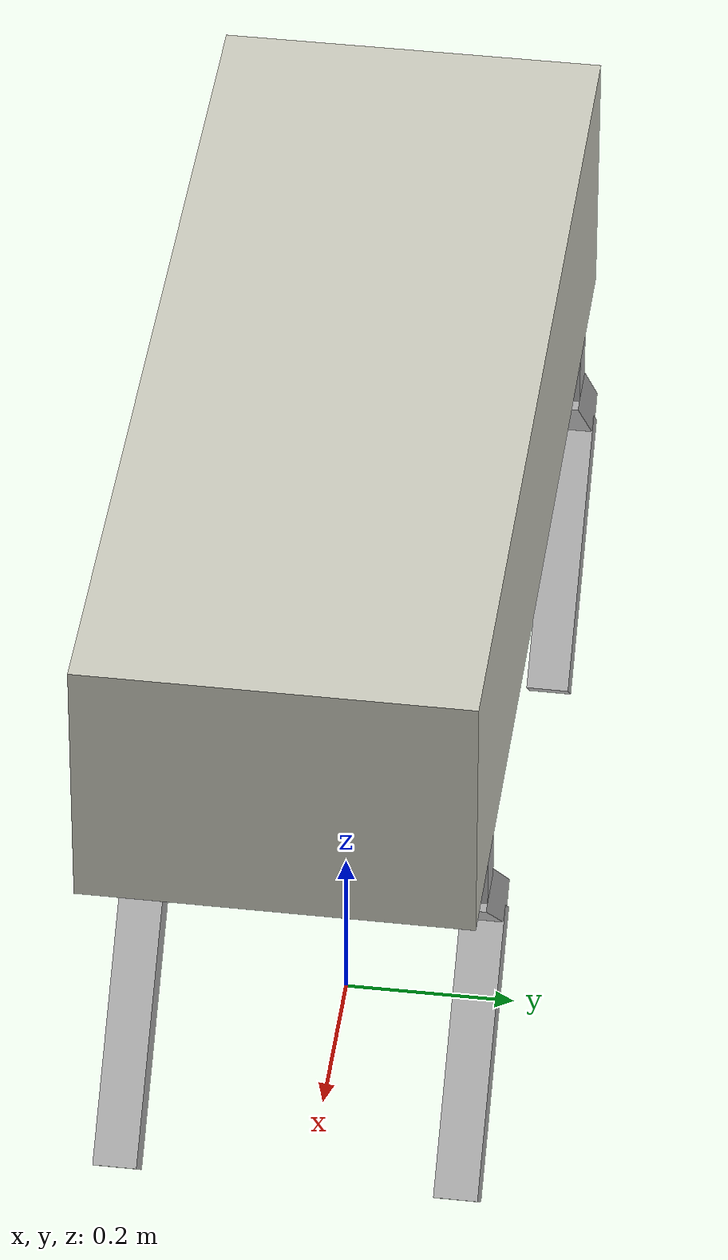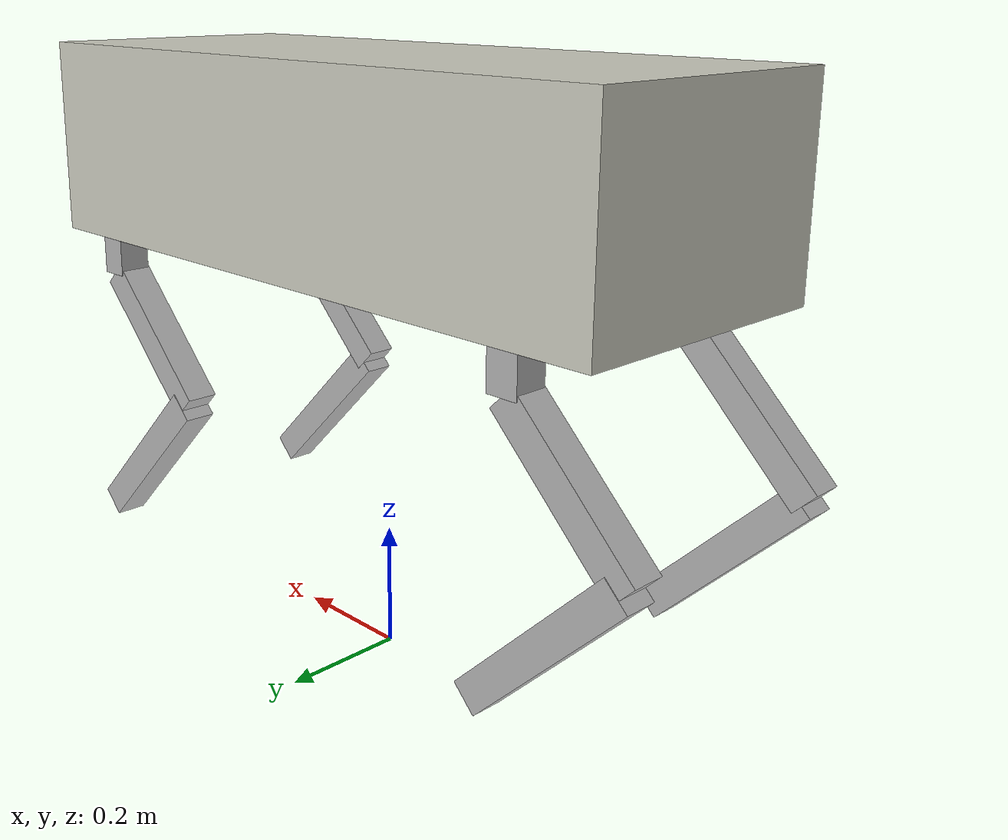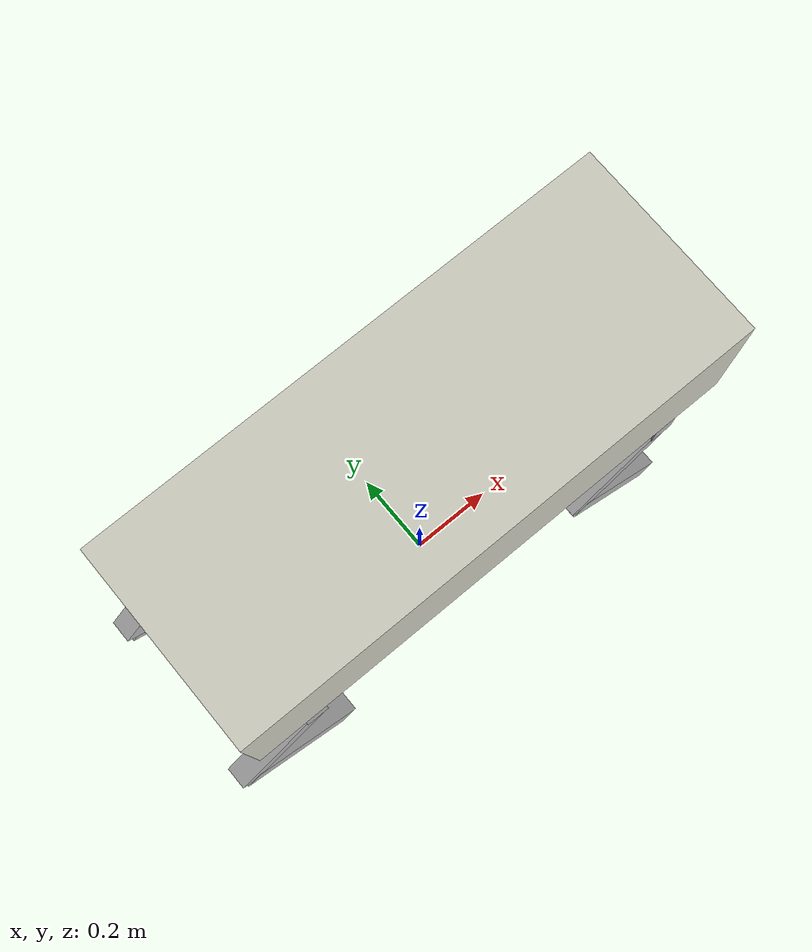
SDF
<?xml version='1.0'?>
<sdf version='1.6'>
  <model name='Quadruped_Robot'>
    <link name='imulink'>
      <inertial>
        <mass>0.52</mass>
        <inertia>
          <ixx>0.0866667</ixx>
          <ixy>0</ixy>
          <ixz>0</ixz>
          <iyy>0.0866667</iyy>
          <iyz>0</iyz>
          <izz>0.0866667</izz>
        </inertia>
        <pose frame=''>0 0 0 0 -0 0</pose>
      </inertial>
      <pose frame=''>0 0 0 3.14159 -0 0</pose>
      <gravity>1</gravity>
      <self_collide>0</self_collide>
      <kinematic>0</kinematic>
      <enable_wind>0</enable_wind>
      <sensor name='ekinox_sensor' type='imu'>
        <imu>
          <orientation_reference_frame>
            <localization>NED</localization>
          </orientation_reference_frame>
          <topic>/QuadRobotIMU</topic>
        </imu>
        <always_on>1</always_on>
        <update_rate>200</update_rate>
        <visualize>0</visualize>
        <plugin name='qrINSmessge' filename='libqrINSmessage_plugin.so'/>
      </sensor>
      <pose frame=''>0 0 0 0 -0 0</pose>
      <pose frame=''>0 0 -0.16 0 -0 0</pose>
      <visual name='visual'>
        <pose frame=''>0 0 0 0 -0 0</pose>
        <geometry>
          <mesh>
            <uri>model://Ekinox_INS/ekinox_ins.dae</uri>
          </mesh>
        </geometry>
        <material>
          <lighting>1</lighting>
          <script>
            <uri>file://media/materials/scripts/gazebo.material</uri>
            <name>Gazebo/Grey</name>
          </script>
          <shader type='vertex'>
            <normal_map>__default__</normal_map>
          </shader>
          <ambient>0.3 0.3 0.3 1</ambient>
          <diffuse>0.7 0.7 0.7 1</diffuse>
          <specular>0.01 0.01 0.01 1</specular>
          <emissive>0 0 0 1</emissive>
        </material>
        <transparency>0</transparency>
        <cast_shadows>1</cast_shadows>
      </visual>
      <collision name='collision'>
        <laser_retro>0</laser_retro>
        <max_contacts>10</max_contacts>
        <pose frame=''>0 0 0 0 -0 0</pose>
        <geometry>
          <mesh>
            <uri>/home/cx/model_editor_models/Ekinox_INS/ekinox_ins.dae</uri>
            <scale>1 1 1</scale>
          </mesh>
        </geometry>
        <surface>
          <friction>
            <ode>
              <mu>1</mu>
              <mu2>1</mu2>
              <fdir1>0 0 0</fdir1>
              <slip1>0</slip1>
              <slip2>0</slip2>
            </ode>
            <torsional>
              <coefficient>1</coefficient>
              <patch_radius>0</patch_radius>
              <surface_radius>0</surface_radius>
              <use_patch_radius>1</use_patch_radius>
              <ode>
                <slip>0</slip>
              </ode>
            </torsional>
          </friction>
          <bounce>
            <restitution_coefficient>0</restitution_coefficient>
            <threshold>1e+06</threshold>
          </bounce>
          <contact>
            <collide_without_contact>0</collide_without_contact>
            <collide_without_contact_bitmask>1</collide_without_contact_bitmask>
            <collide_bitmask>1</collide_bitmask>
            <ode>
              <soft_cfm>0</soft_cfm>
              <soft_erp>0.2</soft_erp>
              <kp>1e+13</kp>
              <kd>1</kd>
              <max_vel>0.01</max_vel>
              <min_depth>0</min_depth>
            </ode>
            <bullet>
              <split_impulse>1</split_impulse>
              <split_impulse_penetration_threshold>-0.01</split_impulse_penetration_threshold>
              <soft_cfm>0</soft_cfm>
              <soft_erp>0.2</soft_erp>
              <kp>1e+13</kp>
              <kd>1</kd>
            </bullet>
          </contact>
        </surface>
      </collision>
    </link>
    <link name='BackLeft_L1'>
      <inertial>
        <mass>1.053</mass>
        <inertia>
          <ixx>0.00053003</ixx>
          <ixy>0</ixy>
          <ixz>0</ixz>
          <iyy>0.00053003</iyy>
          <iyz>0</iyz>
          <izz>0.00043875</izz>
        </inertia>
        <pose frame=''>0 0 0 0 -0 0</pose>
      </inertial>
      <pose frame=''>-0.441 0.195 -0.18725 3.14159 -0 0</pose>
      <gravity>1</gravity>
      <self_collide>0</self_collide>
      <kinematic>0</kinematic>
      <enable_wind>0</enable_wind>
      <visual name='visual'>
        <pose frame=''>0 0 0 0 -0 0</pose>
        <geometry>
          <box>
            <size>0.05 0.05 0.0595</size>
          </box>
        </geometry>
        <material>
          <lighting>1</lighting>
          <script>
            <uri>file://media/materials/scripts/gazebo.material</uri>
            <name>Gazebo/PioneerBody</name>
          </script>
          <shader type='vertex'>
            <normal_map>__default__</normal_map>
          </shader>
          <ambient>0.3 0.3 0.3 1</ambient>
          <diffuse>0.7 0.7 0.7 1</diffuse>
          <specular>0.01 0.01 0.01 1</specular>
          <emissive>0 0 0 1</emissive>
        </material>
        <transparency>0</transparency>
        <cast_shadows>1</cast_shadows>
      </visual>
      <collision name='collision'>
        <laser_retro>0</laser_retro>
        <max_contacts>10</max_contacts>
        <pose frame=''>0 0 0 0 -0 0</pose>
        <geometry>
          <box>
            <size>0.05 0.05 0.0595</size>
          </box>
        </geometry>
        <surface>
          <friction>
            <ode>
              <mu>1</mu>
              <mu2>1</mu2>
              <fdir1>0 0 0</fdir1>
              <slip1>0</slip1>
              <slip2>0</slip2>
            </ode>
            <torsional>
              <coefficient>1</coefficient>
              <patch_radius>0</patch_radius>
              <surface_radius>0</surface_radius>
              <use_patch_radius>1</use_patch_radius>
              <ode>
                <slip>0</slip>
              </ode>
            </torsional>
          </friction>
          <bounce>
            <restitution_coefficient>0</restitution_coefficient>
            <threshold>1e+06</threshold>
          </bounce>
          <contact>
            <collide_without_contact>0</collide_without_contact>
            <collide_without_contact_bitmask>1</collide_without_contact_bitmask>
            <collide_bitmask>1</collide_bitmask>
            <ode>
              <soft_cfm>0</soft_cfm>
              <soft_erp>0.2</soft_erp>
              <kp>1e+13</kp>
              <kd>1</kd>
              <max_vel>0.01</max_vel>
              <min_depth>0</min_depth>
            </ode>
            <bullet>
              <split_impulse>1</split_impulse>
              <split_impulse_penetration_threshold>-0.01</split_impulse_penetration_threshold>
              <soft_cfm>0</soft_cfm>
              <soft_erp>0.2</soft_erp>
              <kp>1e+13</kp>
              <kd>1</kd>
            </bullet>
          </contact>
        </surface>
      </collision>
    </link>
    <link name='BackLeft_L2'>
      <inertial>
        <mass>5.245</mass>
        <inertia>
          <ixx>0.874167</ixx>
          <ixy>0</ixy>
          <ixz>0</ixz>
          <iyy>0.874167</iyy>
          <iyz>0</iyz>
          <izz>0.874167</izz>
        </inertia>
        <pose frame=''>0 0 0 0 -0 0</pose>
      </inertial>
      <pose frame=''>-0.534435 0.193246 -0.3125 3.14159 0.785398 0</pose>
      <gravity>1</gravity>
      <self_collide>0</self_collide>
      <kinematic>0</kinematic>
      <enable_wind>0</enable_wind>
      <visual name='visual'>
        <pose frame=''>0 0 0 0 -0 0</pose>
        <geometry>
          <box>
            <size>0.05 0.05 0.27</size>
          </box>
        </geometry>
        <material>
          <lighting>1</lighting>
          <script>
            <uri>file://media/materials/scripts/gazebo.material</uri>
            <name>Gazebo/PioneerBody</name>
          </script>
          <shader type='vertex'>
            <normal_map>__default__</normal_map>
          </shader>
          <ambient>0.3 0.3 0.3 1</ambient>
          <diffuse>0.7 0.7 0.7 1</diffuse>
          <specular>0.01 0.01 0.01 1</specular>
          <emissive>0 0 0 1</emissive>
        </material>
        <transparency>0</transparency>
        <cast_shadows>1</cast_shadows>
      </visual>
      <collision name='collision'>
        <laser_retro>0</laser_retro>
        <max_contacts>10</max_contacts>
        <pose frame=''>0 0 0 0 -0 0</pose>
        <geometry>
          <box>
            <size>0.05 0.05 0.27</size>
          </box>
        </geometry>
        <surface>
          <friction>
            <ode>
              <mu>1</mu>
              <mu2>1</mu2>
              <fdir1>0 0 0</fdir1>
              <slip1>0</slip1>
              <slip2>0</slip2>
            </ode>
            <torsional>
              <coefficient>1</coefficient>
              <patch_radius>0</patch_radius>
              <surface_radius>0</surface_radius>
              <use_patch_radius>1</use_patch_radius>
              <ode>
                <slip>0</slip>
              </ode>
            </torsional>
          </friction>
          <bounce>
            <restitution_coefficient>0</restitution_coefficient>
            <threshold>1e+06</threshold>
          </bounce>
          <contact>
            <collide_without_contact>0</collide_without_contact>
            <collide_without_contact_bitmask>1</collide_without_contact_bitmask>
            <collide_bitmask>1</collide_bitmask>
            <ode>
              <soft_cfm>0</soft_cfm>
              <soft_erp>0.2</soft_erp>
              <kp>1e+13</kp>
              <kd>1</kd>
              <max_vel>0.01</max_vel>
              <min_depth>0</min_depth>
            </ode>
            <bullet>
              <split_impulse>1</split_impulse>
              <split_impulse_penetration_threshold>-0.01</split_impulse_penetration_threshold>
              <soft_cfm>0</soft_cfm>
              <soft_erp>0.2</soft_erp>
              <kp>1e+13</kp>
              <kd>1</kd>
            </bullet>
          </contact>
        </surface>
      </collision>
    </link>
    <link name='BackLeft_L3'>
      <inertial>
        <mass>3.178</mass>
        <inertia>
          <ixx>0.529667</ixx>
          <ixy>0</ixy>
          <ixz>0</ixz>
          <iyy>0.529667</iyy>
          <iyz>0</iyz>
          <izz>0.529667</izz>
        </inertia>
        <pose frame=''>0 0 0 0 -0 0</pose>
      </inertial>
      <pose frame=''>-0.503457 0.194 -0.52632 3.14159 -0.785398 0</pose>
      <gravity>1</gravity>
      <self_collide>0</self_collide>
      <kinematic>0</kinematic>
      <enable_wind>0</enable_wind>
      <visual name='visual'>
        <pose frame=''>0 0 0 0 -0 0</pose>
        <geometry>
          <box>
            <size>0.05 0.05 0.335</size>
          </box>
        </geometry>
        <material>
          <lighting>1</lighting>
          <script>
            <uri>file://media/materials/scripts/gazebo.material</uri>
            <name>Gazebo/PioneerBody</name>
          </script>
          <shader type='vertex'>
            <normal_map>__default__</normal_map>
          </shader>
          <ambient>0.3 0.3 0.3 1</ambient>
          <diffuse>0.7 0.7 0.7 1</diffuse>
          <specular>0.01 0.01 0.01 1</specular>
          <emissive>0 0 0 1</emissive>
        </material>
        <transparency>0</transparency>
        <cast_shadows>1</cast_shadows>
      </visual>
      <collision name='collision'>
        <laser_retro>0</laser_retro>
        <max_contacts>10</max_contacts>
        <pose frame=''>0 0 0 0 -0 0</pose>
        <geometry>
          <box>
            <size>0.05 0.05 0.335</size>
          </box>
        </geometry>
        <surface>
          <friction>
            <ode>
              <mu>0.6</mu>
              <mu2>0.6</mu2>
              <fdir1>0 0 0</fdir1>
              <slip1>0</slip1>
              <slip2>0</slip2>
            </ode>
            <torsional>
              <coefficient>1</coefficient>
              <patch_radius>0</patch_radius>
              <surface_radius>0</surface_radius>
              <use_patch_radius>1</use_patch_radius>
              <ode>
                <slip>0</slip>
              </ode>
            </torsional>
          </friction>
          <bounce>
            <restitution_coefficient>0</restitution_coefficient>
            <threshold>1e+06</threshold>
          </bounce>
          <contact>
            <collide_without_contact>0</collide_without_contact>
            <collide_without_contact_bitmask>1</collide_without_contact_bitmask>
            <collide_bitmask>1</collide_bitmask>
            <ode>
              <soft_cfm>0</soft_cfm>
              <soft_erp>0.2</soft_erp>
              <kp>1e+13</kp>
              <kd>1</kd>
              <max_vel>0.001</max_vel>
              <min_depth>0.001</min_depth>
            </ode>
            <bullet>
              <split_impulse>1</split_impulse>
              <split_impulse_penetration_threshold>-0.01</split_impulse_penetration_threshold>
              <soft_cfm>0</soft_cfm>
              <soft_erp>0.2</soft_erp>
              <kp>1e+13</kp>
              <kd>1</kd>
            </bullet>
          </contact>
        </surface>
      </collision>
	  <sensor name="bl_contact" type="contact">
		<always_on>1</always_on>
		<update_rate>1000</update_rate>
		<visualize>0</visualize>
  		<contact>
    	  <collision>collision</collision>
  		</contact>
      </sensor>
    </link>
    <link name='Body_Link'>
      <inertial>
        <mass>80</mass>
        <inertia>
          <ixx>1.95217</ixx>
          <ixy>0</ixy>
          <ixz>0</ixz>
          <iyy>9.47817</iyy>
          <iyz>0</iyz>
          <izz>10.1073</izz>
        </inertia>
        <pose frame=''>0 0 0 0 -0 0</pose>
      </inertial>
      <pose frame=''>0 0 0 3.14159 -0 0</pose>
      <gravity>1</gravity>
      <self_collide>0</self_collide>
      <kinematic>0</kinematic>
      <enable_wind>0</enable_wind>
      <visual name='visual'>
        <pose frame=''>0 0 0 0 -0 0</pose>
        <geometry>
          <box>
            <size>1.15 0.44 0.315</size>
          </box>
        </geometry>
        <material>
          <lighting>1</lighting>
          <script>
            <uri>file://media/materials/scripts/gazebo.material</uri>
            <name>Gazebo/PaintedWall</name>
          </script>
          <emissive>0 0 0 1</emissive>
          <shader type='vertex'>
            <normal_map>__default__</normal_map>
          </shader>
          <ambient>0.3 0.3 0.3 1</ambient>
          <diffuse>0.7 0.7 0.7 1</diffuse>
          <specular>0.01 0.01 0.01 1</specular>
        </material>
        <transparency>0</transparency>
        <cast_shadows>1</cast_shadows>
      </visual>
      <collision name='collision'>
        <laser_retro>0</laser_retro>
        <max_contacts>10</max_contacts>
        <pose frame=''>0 0 0 0 -0 0</pose>
        <geometry>
          <box>
            <size>1.15 0.44 0.315</size>
          </box>
        </geometry>
        <surface>
          <friction>
            <ode>
              <mu>1</mu>
              <mu2>1</mu2>
              <fdir1>0 0 0</fdir1>
              <slip1>0</slip1>
              <slip2>0</slip2>
            </ode>
            <torsional>
              <coefficient>1</coefficient>
              <patch_radius>0</patch_radius>
              <surface_radius>0</surface_radius>
              <use_patch_radius>1</use_patch_radius>
              <ode>
                <slip>0</slip>
              </ode>
            </torsional>
          </friction>
          <bounce>
            <restitution_coefficient>0</restitution_coefficient>
            <threshold>1e+06</threshold>
          </bounce>
          <contact>
            <collide_without_contact>0</collide_without_contact>
            <collide_without_contact_bitmask>1</collide_without_contact_bitmask>
            <collide_bitmask>1</collide_bitmask>
            <ode>
              <soft_cfm>0</soft_cfm>
              <soft_erp>0.2</soft_erp>
              <kp>1e+13</kp>
              <kd>1</kd>
              <max_vel>0.01</max_vel>
              <min_depth>0</min_depth>
            </ode>
            <bullet>
              <split_impulse>1</split_impulse>
              <split_impulse_penetration_threshold>-0.01</split_impulse_penetration_threshold>
              <soft_cfm>0</soft_cfm>
              <soft_erp>0.2</soft_erp>
              <kp>1e+13</kp>
              <kd>1</kd>
            </bullet>
          </contact>
        </surface>
      </collision>
    </link>
    <link name='FrontLeft_L1'>
      <inertial>
        <mass>1.053</mass>
        <inertia>
          <ixx>0.00053003</ixx>
          <ixy>0</ixy>
          <ixz>0</ixz>
          <iyy>0.00053003</iyy>
          <iyz>0</iyz>
          <izz>0.00043875</izz>
        </inertia>
        <pose frame=''>0 0 0 0 -0 0</pose>
      </inertial>
      <pose frame=''>0.441 0.195 -0.18725 3.14159 -0 0</pose>
      <gravity>1</gravity>
      <self_collide>0</self_collide>
      <kinematic>0</kinematic>
      <enable_wind>0</enable_wind>
      <visual name='visual'>
        <pose frame=''>0 0 0 0 -0 0</pose>
        <geometry>
          <box>
            <size>0.05 0.05 0.0595</size>
          </box>
        </geometry>
        <material>
          <lighting>1</lighting>
          <script>
            <uri>file://media/materials/scripts/gazebo.material</uri>
            <name>Gazebo/PioneerBody</name>
          </script>
          <shader type='vertex'>
            <normal_map>__default__</normal_map>
          </shader>
          <ambient>0.3 0.3 0.3 1</ambient>
          <diffuse>0.7 0.7 0.7 1</diffuse>
          <specular>0.01 0.01 0.01 1</specular>
          <emissive>0 0 0 1</emissive>
        </material>
        <transparency>0</transparency>
        <cast_shadows>1</cast_shadows>
      </visual>
      <collision name='collision'>
        <laser_retro>0</laser_retro>
        <max_contacts>10</max_contacts>
        <pose frame=''>0 0 0 0 -0 0</pose>
        <geometry>
          <box>
            <size>0.05 0.05 0.0595</size>
          </box>
        </geometry>
        <surface>
          <friction>
            <ode>
              <mu>1</mu>
              <mu2>1</mu2>
              <fdir1>0 0 0</fdir1>
              <slip1>0</slip1>
              <slip2>0</slip2>
            </ode>
            <torsional>
              <coefficient>1</coefficient>
              <patch_radius>0</patch_radius>
              <surface_radius>0</surface_radius>
              <use_patch_radius>1</use_patch_radius>
              <ode>
                <slip>0</slip>
              </ode>
            </torsional>
          </friction>
          <bounce>
            <restitution_coefficient>0</restitution_coefficient>
            <threshold>1e+06</threshold>
          </bounce>
          <contact>
            <collide_without_contact>0</collide_without_contact>
            <collide_without_contact_bitmask>1</collide_without_contact_bitmask>
            <collide_bitmask>1</collide_bitmask>
            <ode>
              <soft_cfm>0</soft_cfm>
              <soft_erp>0.2</soft_erp>
              <kp>1e+13</kp>
              <kd>1</kd>
              <max_vel>0.01</max_vel>
              <min_depth>0</min_depth>
            </ode>
            <bullet>
              <split_impulse>1</split_impulse>
              <split_impulse_penetration_threshold>-0.01</split_impulse_penetration_threshold>
              <soft_cfm>0</soft_cfm>
              <soft_erp>0.2</soft_erp>
              <kp>1e+13</kp>
              <kd>1</kd>
            </bullet>
          </contact>
        </surface>
      </collision>
    </link>
    <link name='FrontLeft_L2'>
      <inertial>
        <mass>5.245</mass>
        <inertia>
          <ixx>0.874167</ixx>
          <ixy>0</ixy>
          <ixz>0</ixz>
          <iyy>0.874167</iyy>
          <iyz>0</iyz>
          <izz>0.874167</izz>
        </inertia>
        <pose frame=''>0 0 0 0 -0 0</pose>
      </inertial>
      <pose frame=''>0.347565 0.193246 -0.3125 3.14159 0.785398 0</pose>
      <gravity>1</gravity>
      <self_collide>0</self_collide>
      <kinematic>0</kinematic>
      <enable_wind>0</enable_wind>
      <visual name='visual'>
        <pose frame=''>0 0 0 0 -0 0</pose>
        <geometry>
          <box>
            <size>0.05 0.05 0.27</size>
          </box>
        </geometry>
        <material>
          <lighting>1</lighting>
          <script>
            <uri>file://media/materials/scripts/gazebo.material</uri>
            <name>Gazebo/PioneerBody</name>
          </script>
          <shader type='vertex'>
            <normal_map>__default__</normal_map>
          </shader>
          <ambient>0.3 0.3 0.3 1</ambient>
          <diffuse>0.7 0.7 0.7 1</diffuse>
          <specular>0.01 0.01 0.01 1</specular>
          <emissive>0 0 0 1</emissive>
        </material>
        <transparency>0</transparency>
        <cast_shadows>1</cast_shadows>
      </visual>
      <collision name='collision'>
        <laser_retro>0</laser_retro>
        <max_contacts>10</max_contacts>
        <pose frame=''>0 0 0 0 -0 0</pose>
        <geometry>
          <box>
            <size>0.05 0.05 0.27</size>
          </box>
        </geometry>
        <surface>
          <friction>
            <ode>
              <mu>1</mu>
              <mu2>1</mu2>
              <fdir1>0 0 0</fdir1>
              <slip1>0</slip1>
              <slip2>0</slip2>
            </ode>
            <torsional>
              <coefficient>1</coefficient>
              <patch_radius>0</patch_radius>
              <surface_radius>0</surface_radius>
              <use_patch_radius>1</use_patch_radius>
              <ode>
                <slip>0</slip>
              </ode>
            </torsional>
          </friction>
          <bounce>
            <restitution_coefficient>0</restitution_coefficient>
            <threshold>1e+06</threshold>
          </bounce>
          <contact>
            <collide_without_contact>0</collide_without_contact>
            <collide_without_contact_bitmask>1</collide_without_contact_bitmask>
            <collide_bitmask>1</collide_bitmask>
            <ode>
              <soft_cfm>0</soft_cfm>
              <soft_erp>0.2</soft_erp>
              <kp>1e+13</kp>
              <kd>1</kd>
              <max_vel>0.01</max_vel>
              <min_depth>0</min_depth>
            </ode>
            <bullet>
              <split_impulse>1</split_impulse>
              <split_impulse_penetration_threshold>-0.01</split_impulse_penetration_threshold>
              <soft_cfm>0</soft_cfm>
              <soft_erp>0.2</soft_erp>
              <kp>1e+13</kp>
              <kd>1</kd>
            </bullet>
          </contact>
        </surface>
      </collision>
    </link>
    <link name='FrontLeft_L3'>
      <inertial>
        <mass>3.178</mass>
        <inertia>
          <ixx>0.529667</ixx>
          <ixy>0</ixy>
          <ixz>0</ixz>
          <iyy>0.529667</iyy>
          <iyz>0</iyz>
          <izz>0.529667</izz>
        </inertia>
        <pose frame=''>0 0 0 0 -0 0</pose>
      </inertial>
      <pose frame=''>0.378543 0.194 -0.52632 3.14159 -0.785398 0</pose>
      <gravity>1</gravity>
      <self_collide>0</self_collide>
      <kinematic>0</kinematic>
      <enable_wind>0</enable_wind>
      <visual name='visual'>
        <pose frame=''>0 0 0 0 -0 0</pose>
        <geometry>
          <box>
            <size>0.05 0.05 0.335</size>
          </box>
        </geometry>
        <material>
          <lighting>1</lighting>
          <script>
            <uri>file://media/materials/scripts/gazebo.material</uri>
            <name>Gazebo/PioneerBody</name>
          </script>
          <shader type='vertex'>
            <normal_map>__default__</normal_map>
          </shader>
          <ambient>0.3 0.3 0.3 1</ambient>
          <diffuse>0.7 0.7 0.7 1</diffuse>
          <specular>0.01 0.01 0.01 1</specular>
          <emissive>0 0 0 1</emissive>
        </material>
        <transparency>0</transparency>
        <cast_shadows>1</cast_shadows>
      </visual>
      <collision name='collision'>
        <laser_retro>0</laser_retro>
        <max_contacts>10</max_contacts>
        <pose frame=''>0 0 0 0 -0 0</pose>
        <geometry>
          <box>
            <size>0.05 0.05 0.335</size>
          </box>
        </geometry>
        <surface>
          <friction>
            <ode>
              <mu>0.6</mu>
              <mu2>0.6</mu2>
              <fdir1>0 0 0</fdir1>
              <slip1>0</slip1>
              <slip2>0</slip2>
            </ode>
            <torsional>
              <coefficient>1</coefficient>
              <patch_radius>0</patch_radius>
              <surface_radius>0</surface_radius>
              <use_patch_radius>1</use_patch_radius>
              <ode>
                <slip>0</slip>
              </ode>
            </torsional>
          </friction>
          <bounce>
            <restitution_coefficient>0</restitution_coefficient>
            <threshold>1e+06</threshold>
          </bounce>
          <contact>
            <collide_without_contact>0</collide_without_contact>
            <collide_without_contact_bitmask>1</collide_without_contact_bitmask>
            <collide_bitmask>1</collide_bitmask>
            <ode>
              <soft_cfm>0</soft_cfm>
              <soft_erp>0.2</soft_erp>
              <kp>1e+13</kp>
              <kd>1</kd>
              <max_vel>0.001</max_vel>
              <min_depth>0.001</min_depth>
            </ode>
            <bullet>
              <split_impulse>1</split_impulse>
              <split_impulse_penetration_threshold>-0.01</split_impulse_penetration_threshold>
              <soft_cfm>0</soft_cfm>
              <soft_erp>0.2</soft_erp>
              <kp>1e+13</kp>
              <kd>1</kd>
            </bullet>
          </contact>
        </surface>
      </collision>
	  <sensor name="fl_contact" type="contact">
		<always_on>1</always_on>
		<update_rate>1000</update_rate>
		<visualize>0</visualize>
  		<contact>
    	  <collision>collision</collision>
  		</contact>
      </sensor>
    </link>
    <link name='FrontRight_L1'>
      <inertial>
        <mass>1.053</mass>
        <inertia>
          <ixx>0.00053003</ixx>
          <ixy>0</ixy>
          <ixz>0</ixz>
          <iyy>0.00053003</iyy>
          <iyz>0</iyz>
          <izz>0.00043875</izz>
        </inertia>
        <pose frame=''>0 0 0 0 -0 0</pose>
      </inertial>
      <pose frame=''>0.441 -0.195 -0.18725 3.14159 -0 0</pose>
      <gravity>1</gravity>
      <self_collide>0</self_collide>
      <kinematic>0</kinematic>
      <enable_wind>0</enable_wind>
      <visual name='visual'>
        <pose frame=''>0 0 0 0 -0 0</pose>
        <geometry>
          <box>
            <size>0.05 0.05 0.0595</size>
          </box>
        </geometry>
        <material>
          <lighting>1</lighting>
          <script>
            <uri>file://media/materials/scripts/gazebo.material</uri>
            <name>Gazebo/PioneerBody</name>
          </script>
          <shader type='vertex'>
            <normal_map>__default__</normal_map>
          </shader>
          <ambient>0.3 0.3 0.3 1</ambient>
          <diffuse>0.7 0.7 0.7 1</diffuse>
          <specular>0.01 0.01 0.01 1</specular>
          <emissive>0 0 0 1</emissive>
        </material>
        <transparency>0</transparency>
        <cast_shadows>1</cast_shadows>
      </visual>
      <collision name='collision'>
        <laser_retro>0</laser_retro>
        <max_contacts>10</max_contacts>
        <pose frame=''>0 0 0 0 -0 0</pose>
        <geometry>
          <box>
            <size>0.05 0.05 0.0595</size>
          </box>
        </geometry>
        <surface>
          <friction>
            <ode>
              <mu>1</mu>
              <mu2>1</mu2>
              <fdir1>0 0 0</fdir1>
              <slip1>0</slip1>
              <slip2>0</slip2>
            </ode>
            <torsional>
              <coefficient>1</coefficient>
              <patch_radius>0</patch_radius>
              <surface_radius>0</surface_radius>
              <use_patch_radius>1</use_patch_radius>
              <ode>
                <slip>0</slip>
              </ode>
            </torsional>
          </friction>
          <bounce>
            <restitution_coefficient>0</restitution_coefficient>
            <threshold>1e+06</threshold>
          </bounce>
          <contact>
            <collide_without_contact>0</collide_without_contact>
            <collide_without_contact_bitmask>1</collide_without_contact_bitmask>
            <collide_bitmask>1</collide_bitmask>
            <ode>
              <soft_cfm>0</soft_cfm>
              <soft_erp>0.2</soft_erp>
              <kp>1e+13</kp>
              <kd>1</kd>
              <max_vel>0.01</max_vel>
              <min_depth>0</min_depth>
            </ode>
            <bullet>
              <split_impulse>1</split_impulse>
              <split_impulse_penetration_threshold>-0.01</split_impulse_penetration_threshold>
              <soft_cfm>0</soft_cfm>
              <soft_erp>0.2</soft_erp>
              <kp>1e+13</kp>
              <kd>1</kd>
            </bullet>
          </contact>
        </surface>
      </collision>
    </link>
    <link name='FrontRight_L2'>
      <inertial>
        <mass>5.245</mass>
        <inertia>
          <ixx>0.874167</ixx>
          <ixy>0</ixy>
          <ixz>0</ixz>
          <iyy>0.874167</iyy>
          <iyz>0</iyz>
          <izz>0.874167</izz>
        </inertia>
        <pose frame=''>0 0 0 0 -0 0</pose>
      </inertial>
      <pose frame=''>0.347565 -0.193246 -0.3125 3.14159 0.785398 0</pose>
      <gravity>1</gravity>
      <self_collide>0</self_collide>
      <kinematic>0</kinematic>
      <enable_wind>0</enable_wind>
      <visual name='visual'>
        <pose frame=''>0 0 0 0 -0 0</pose>
        <geometry>
          <box>
            <size>0.05 0.05 0.27</size>
          </box>
        </geometry>
        <material>
          <lighting>1</lighting>
          <script>
            <uri>file://media/materials/scripts/gazebo.material</uri>
            <name>Gazebo/PioneerBody</name>
          </script>
          <shader type='vertex'>
            <normal_map>__default__</normal_map>
          </shader>
          <ambient>0.3 0.3 0.3 1</ambient>
          <diffuse>0.7 0.7 0.7 1</diffuse>
          <specular>0.01 0.01 0.01 1</specular>
          <emissive>0 0 0 1</emissive>
        </material>
        <transparency>0</transparency>
        <cast_shadows>1</cast_shadows>
      </visual>
      <collision name='collision'>
        <laser_retro>0</laser_retro>
        <max_contacts>10</max_contacts>
        <pose frame=''>0 0 0 0 -0 0</pose>
        <geometry>
          <box>
            <size>0.05 0.05 0.27</size>
          </box>
        </geometry>
        <surface>
          <friction>
            <ode>
              <mu>1</mu>
              <mu2>1</mu2>
              <fdir1>0 0 0</fdir1>
              <slip1>0</slip1>
              <slip2>0</slip2>
            </ode>
            <torsional>
              <coefficient>1</coefficient>
              <patch_radius>0</patch_radius>
              <surface_radius>0</surface_radius>
              <use_patch_radius>1</use_patch_radius>
              <ode>
                <slip>0</slip>
              </ode>
            </torsional>
          </friction>
          <bounce>
            <restitution_coefficient>0</restitution_coefficient>
            <threshold>1e+06</threshold>
          </bounce>
          <contact>
            <collide_without_contact>0</collide_without_contact>
            <collide_without_contact_bitmask>1</collide_without_contact_bitmask>
            <collide_bitmask>1</collide_bitmask>
            <ode>
              <soft_cfm>0</soft_cfm>
              <soft_erp>0.2</soft_erp>
              <kp>1e+13</kp>
              <kd>1</kd>
              <max_vel>0.01</max_vel>
              <min_depth>0</min_depth>
            </ode>
            <bullet>
              <split_impulse>1</split_impulse>
              <split_impulse_penetration_threshold>-0.01</split_impulse_penetration_threshold>
              <soft_cfm>0</soft_cfm>
              <soft_erp>0.2</soft_erp>
              <kp>1e+13</kp>
              <kd>1</kd>
            </bullet>
          </contact>
        </surface>
      </collision>
    </link>
    <link name='FrontRight_L3'>
      <inertial>
        <mass>3.178</mass>
        <inertia>
          <ixx>0.529667</ixx>
          <ixy>0</ixy>
          <ixz>0</ixz>
          <iyy>0.529667</iyy>
          <iyz>0</iyz>
          <izz>0.529667</izz>
        </inertia>
        <pose frame=''>0 0 0 0 -0 0</pose>
      </inertial>
      <pose frame=''>0.378543 -0.194 -0.52632 3.14159 -0.785398 0</pose>
      <gravity>1</gravity>
      <self_collide>0</self_collide>
      <kinematic>0</kinematic>
      <enable_wind>0</enable_wind>
      <visual name='visual'>
        <pose frame=''>0 0 0 0 -0 0</pose>
        <geometry>
          <box>
            <size>0.05 0.05 0.335</size>
          </box>
        </geometry>
        <material>
          <lighting>1</lighting>
          <script>
            <uri>file://media/materials/scripts/gazebo.material</uri>
            <name>Gazebo/PioneerBody</name>
          </script>
          <shader type='vertex'>
            <normal_map>__default__</normal_map>
          </shader>
          <ambient>0.3 0.3 0.3 1</ambient>
          <diffuse>0.7 0.7 0.7 1</diffuse>
          <specular>0.01 0.01 0.01 1</specular>
          <emissive>0 0 0 1</emissive>
        </material>
        <transparency>0</transparency>
        <cast_shadows>1</cast_shadows>
      </visual>
      <collision name='collision'>
        <laser_retro>0</laser_retro>
        <max_contacts>10</max_contacts>
        <pose frame=''>0 0 0 0 -0 0</pose>
        <geometry>
          <box>
            <size>0.05 0.05 0.335</size>
          </box>
        </geometry>
        <surface>
          <friction>
            <ode>
              <mu>0.6</mu>
              <mu2>0.6</mu2>
              <fdir1>0 0 0</fdir1>
              <slip1>0</slip1>
              <slip2>0</slip2>
            </ode>
            <torsional>
              <coefficient>1</coefficient>
              <patch_radius>0</patch_radius>
              <surface_radius>0</surface_radius>
              <use_patch_radius>1</use_patch_radius>
              <ode>
                <slip>0</slip>
              </ode>
            </torsional>
          </friction>
          <bounce>
            <restitution_coefficient>0</restitution_coefficient>
            <threshold>1e+06</threshold>
          </bounce>
          <contact>
            <collide_without_contact>0</collide_without_contact>
            <collide_without_contact_bitmask>1</collide_without_contact_bitmask>
            <collide_bitmask>1</collide_bitmask>
            <ode>
              <soft_cfm>0</soft_cfm>
              <soft_erp>0.2</soft_erp>
              <kp>1e+13</kp>
              <kd>1</kd>
              <max_vel>0.001</max_vel>
              <min_depth>0.001</min_depth>
            </ode>
            <bullet>
              <split_impulse>1</split_impulse>
              <split_impulse_penetration_threshold>-0.01</split_impulse_penetration_threshold>
              <soft_cfm>0</soft_cfm>
              <soft_erp>0.2</soft_erp>
              <kp>1e+13</kp>
              <kd>1</kd>
            </bullet>
          </contact>
        </surface>
      </collision>
	  <sensor name="fr_contact" type="contact">
		<always_on>1</always_on>
		<update_rate>1000</update_rate>
		<visualize>0</visualize>
  		<contact>
    	  <collision>collision</collision>
  		</contact>
      </sensor>
    </link>
    <link name='brlinkl1'>
      <inertial>
        <mass>1.053</mass>
        <inertia>
          <ixx>0.00053003</ixx>
          <ixy>0</ixy>
          <ixz>0</ixz>
          <iyy>0.00053003</iyy>
          <iyz>0</iyz>
          <izz>0.00043875</izz>
        </inertia>
        <pose frame=''>0 0 0 0 -0 0</pose>
      </inertial>
      <pose frame=''>-0.441 -0.195 -0.18725 3.14159 -0 0</pose>
      <gravity>1</gravity>
      <self_collide>0</self_collide>
      <kinematic>0</kinematic>
      <enable_wind>0</enable_wind>
      <visual name='visual'>
        <pose frame=''>0 0 0 0 -0 0</pose>
        <geometry>
          <box>
            <size>0.05 0.05 0.0595</size>
          </box>
        </geometry>
        <material>
          <lighting>1</lighting>
          <script>
            <uri>file://media/materials/scripts/gazebo.material</uri>
            <name>Gazebo/PioneerBody</name>
          </script>
          <shader type='vertex'>
            <normal_map>__default__</normal_map>
          </shader>
          <ambient>0.3 0.3 0.3 1</ambient>
          <diffuse>0.7 0.7 0.7 1</diffuse>
          <specular>0.01 0.01 0.01 1</specular>
          <emissive>0 0 0 1</emissive>
        </material>
        <transparency>0</transparency>
        <cast_shadows>1</cast_shadows>
      </visual>
      <collision name='collision'>
        <laser_retro>0</laser_retro>
        <max_contacts>10</max_contacts>
        <pose frame=''>0 0 0 0 -0 0</pose>
        <geometry>
          <box>
            <size>0.05 0.05 0.0595</size>
          </box>
        </geometry>
        <surface>
          <friction>
            <ode>
              <mu>1</mu>
              <mu2>1</mu2>
              <fdir1>0 0 0</fdir1>
              <slip1>0</slip1>
              <slip2>0</slip2>
            </ode>
            <torsional>
              <coefficient>1</coefficient>
              <patch_radius>0</patch_radius>
              <surface_radius>0</surface_radius>
              <use_patch_radius>1</use_patch_radius>
              <ode>
                <slip>0</slip>
              </ode>
            </torsional>
          </friction>
          <bounce>
            <restitution_coefficient>0</restitution_coefficient>
            <threshold>1e+06</threshold>
          </bounce>
          <contact>
            <collide_without_contact>0</collide_without_contact>
            <collide_without_contact_bitmask>1</collide_without_contact_bitmask>
            <collide_bitmask>1</collide_bitmask>
            <ode>
              <soft_cfm>0</soft_cfm>
              <soft_erp>0.2</soft_erp>
              <kp>1e+13</kp>
              <kd>1</kd>
              <max_vel>0.01</max_vel>
              <min_depth>0</min_depth>
            </ode>
            <bullet>
              <split_impulse>1</split_impulse>
              <split_impulse_penetration_threshold>-0.01</split_impulse_penetration_threshold>
              <soft_cfm>0</soft_cfm>
              <soft_erp>0.2</soft_erp>
              <kp>1e+13</kp>
              <kd>1</kd>
            </bullet>
          </contact>
        </surface>
      </collision>
    </link>
    <link name='brlinkl2'>
      <inertial>
        <mass>5.245</mass>
        <inertia>
          <ixx>0.874167</ixx>
          <ixy>0</ixy>
          <ixz>0</ixz>
          <iyy>0.874167</iyy>
          <iyz>0</iyz>
          <izz>0.874167</izz>
        </inertia>
        <pose frame=''>0 0 0 0 -0 0</pose>
      </inertial>
      <pose frame=''>-0.534435 -0.193246 -0.3125 3.14159 0.785398 0</pose>
      <gravity>1</gravity>
      <self_collide>0</self_collide>
      <kinematic>0</kinematic>
      <enable_wind>0</enable_wind>
      <visual name='visual'>
        <pose frame=''>0 0 0 0 -0 0</pose>
        <geometry>
          <box>
            <size>0.05 0.05 0.27</size>
          </box>
        </geometry>
        <material>
          <lighting>1</lighting>
          <script>
            <uri>file://media/materials/scripts/gazebo.material</uri>
            <name>Gazebo/PioneerBody</name>
          </script>
          <shader type='vertex'>
            <normal_map>__default__</normal_map>
          </shader>
          <ambient>0.3 0.3 0.3 1</ambient>
          <diffuse>0.7 0.7 0.7 1</diffuse>
          <specular>0.01 0.01 0.01 1</specular>
          <emissive>0 0 0 1</emissive>
        </material>
        <transparency>0</transparency>
        <cast_shadows>1</cast_shadows>
      </visual>
      <collision name='collision'>
        <laser_retro>0</laser_retro>
        <max_contacts>10</max_contacts>
        <pose frame=''>0 0 0 0 -0 0</pose>
        <geometry>
          <box>
            <size>0.05 0.05 0.27</size>
          </box>
        </geometry>
        <surface>
          <friction>
            <ode>
              <mu>1</mu>
              <mu2>1</mu2>
              <fdir1>0 0 0</fdir1>
              <slip1>0</slip1>
              <slip2>0</slip2>
            </ode>
            <torsional>
              <coefficient>1</coefficient>
              <patch_radius>0</patch_radius>
              <surface_radius>0</surface_radius>
              <use_patch_radius>1</use_patch_radius>
              <ode>
                <slip>0</slip>
              </ode>
            </torsional>
          </friction>
          <bounce>
            <restitution_coefficient>0</restitution_coefficient>
            <threshold>1e+06</threshold>
          </bounce>
          <contact>
            <collide_without_contact>0</collide_without_contact>
            <collide_without_contact_bitmask>1</collide_without_contact_bitmask>
            <collide_bitmask>1</collide_bitmask>
            <ode>
              <soft_cfm>0</soft_cfm>
              <soft_erp>0.2</soft_erp>
              <kp>1e+13</kp>
              <kd>1</kd>
              <max_vel>0.01</max_vel>
              <min_depth>0</min_depth>
            </ode>
            <bullet>
              <split_impulse>1</split_impulse>
              <split_impulse_penetration_threshold>-0.01</split_impulse_penetration_threshold>
              <soft_cfm>0</soft_cfm>
              <soft_erp>0.2</soft_erp>
              <kp>1e+13</kp>
              <kd>1</kd>
            </bullet>
          </contact>
        </surface>
      </collision>
    </link>
    <link name='brlinkl3'>
      <inertial>
        <mass>3.178</mass>
        <inertia>
          <ixx>0.529667</ixx>
          <ixy>0</ixy>
          <ixz>0</ixz>
          <iyy>0.529667</iyy>
          <iyz>0</iyz>
          <izz>0.529667</izz>
        </inertia>
        <pose frame=''>0 0 0 0 -0 0</pose>
      </inertial>
      <pose frame=''>-0.503457 -0.194 -0.52632 3.14159 -0.785398 0</pose>
      <gravity>1</gravity>
      <self_collide>0</self_collide>
      <kinematic>0</kinematic>
      <enable_wind>0</enable_wind>
      <visual name='visual'>
        <pose frame=''>0 0 0 0 -0 0</pose>
        <geometry>
          <box>
            <size>0.05 0.05 0.335</size>
          </box>
        </geometry>
        <material>
          <lighting>1</lighting>
          <script>
            <uri>file://media/materials/scripts/gazebo.material</uri>
            <name>Gazebo/PioneerBody</name>
          </script>
          <shader type='vertex'>
            <normal_map>__default__</normal_map>
          </shader>
          <ambient>0.3 0.3 0.3 1</ambient>
          <diffuse>0.7 0.7 0.7 1</diffuse>
          <specular>0.01 0.01 0.01 1</specular>
          <emissive>0 0 0 1</emissive>
        </material>
        <transparency>0</transparency>
        <cast_shadows>1</cast_shadows>
      </visual>
      <collision name='collision'>
        <laser_retro>0</laser_retro>
        <max_contacts>10</max_contacts>
        <pose frame=''>0 0 0 0 -0 0</pose>
        <geometry>
          <box>
            <size>0.05 0.05 0.335</size>
          </box>
        </geometry>
        <surface>
          <friction>
            <ode>
              <mu>0.6</mu>
              <mu2>0.6</mu2>
              <fdir1>0 0 0</fdir1>
              <slip1>0</slip1>
              <slip2>0</slip2>
            </ode>
            <torsional>
              <coefficient>1</coefficient>
              <patch_radius>0</patch_radius>
              <surface_radius>0</surface_radius>
              <use_patch_radius>1</use_patch_radius>
              <ode>
                <slip>0</slip>
              </ode>
            </torsional>
          </friction>
          <bounce>
            <restitution_coefficient>0</restitution_coefficient>
            <threshold>1e+06</threshold>
          </bounce>
          <contact>
            <collide_without_contact>0</collide_without_contact>
            <collide_without_contact_bitmask>1</collide_without_contact_bitmask>
            <collide_bitmask>1</collide_bitmask>
            <ode>
              <soft_cfm>0</soft_cfm>
              <soft_erp>0.2</soft_erp>
              <kp>1e+13</kp>
              <kd>1</kd>
              <max_vel>0.001</max_vel>
              <min_depth>0.001</min_depth>
            </ode>
            <bullet>
              <split_impulse>1</split_impulse>
              <split_impulse_penetration_threshold>-0.01</split_impulse_penetration_threshold>
              <soft_cfm>0</soft_cfm>
              <soft_erp>0.2</soft_erp>
              <kp>1e+13</kp>
              <kd>1</kd>
            </bullet>
          </contact>
        </surface>
      </collision>
	  <sensor name="br_contact" type="contact">
		<always_on>1</always_on>
		<update_rate>1000</update_rate>
		<visualize>0</visualize>
  		<contact>
    	  <collision>collision</collision>
  		</contact>
      </sensor>
    </link>
    <joint name='BackLeft_theta1' type='revolute'>
      <parent>Body_Link</parent>
      <child>BackLeft_L1</child>
      <pose frame=''>0 0 -0.02975 0 -0 0</pose>
      <axis>
        <xyz>1 0 0</xyz>
        <use_parent_model_frame>0</use_parent_model_frame>
        <limit>
          <lower>-1.57</lower>
          <upper>1.57</upper>
          <effort>-1</effort>
          <velocity>-1</velocity>
        </limit>
        <dynamics>
          <spring_reference>0</spring_reference>
          <spring_stiffness>0</spring_stiffness>
          <damping>1</damping>
          <friction>1</friction>
        </dynamics>
      </axis>
      <physics>
        <ode>
          <limit>
            <cfm>0</cfm>
            <erp>0.2</erp>
          </limit>
          <suspension>
            <cfm>0</cfm>
            <erp>0.2</erp>
          </suspension>
        </ode>
      </physics>
	  <sensor name="bl_theta1" type="force_torque">
		<always_on>1</always_on>
		<update_rate>200</update_rate>
		<visualize>0</visualize>
	  	<force_torque>
			  <measure_direction>parent_to_child</measure_direction>
	  	</force_torque>
      </sensor>
    </joint>
    <joint name='BackLeft_theta2' type='revolute'>
      <parent>BackLeft_L1</parent>
      <child>BackLeft_L2</child>
      <pose frame=''>0 0 -0.135 0 -0 0</pose>
      <axis>
        <xyz>0 1 0</xyz>
        <use_parent_model_frame>0</use_parent_model_frame>
        <limit>
          <lower>-0.785398</lower>
          <upper>2.35619</upper>
          <effort>-1</effort>
          <velocity>-1</velocity>
        </limit>
        <dynamics>
          <spring_reference>0</spring_reference>
          <spring_stiffness>0</spring_stiffness>
          <damping>1</damping>
          <friction>1</friction>
        </dynamics>
      </axis>
      <physics>
        <ode>
          <limit>
            <cfm>0</cfm>
            <erp>0.2</erp>
          </limit>
          <suspension>
            <cfm>0</cfm>
            <erp>0.2</erp>
          </suspension>
        </ode>
      </physics>
	  <sensor name="bl_theta2" type="force_torque">
		<always_on>1</always_on>
		<update_rate>200</update_rate>
		<visualize>0</visualize>
	  	<force_torque>
			  <measure_direction>parent_to_child</measure_direction>
	  	</force_torque>
      </sensor>
    </joint>
    <joint name='BackLeft_theta3' type='revolute'>
      <parent>BackLeft_L2</parent>
      <child>BackLeft_L3</child>
      <pose frame=''>0 0 -0.1675 0 -0 0</pose>
      <axis>
        <xyz>0 1 0</xyz>
        <use_parent_model_frame>0</use_parent_model_frame>
        <limit>
          <lower>-1.57</lower>
          <upper>1.57</upper>
          <effort>-1</effort>
          <velocity>-1</velocity>
        </limit>
        <dynamics>
          <spring_reference>0</spring_reference>
          <spring_stiffness>0</spring_stiffness>
          <damping>1</damping>
          <friction>1</friction>
        </dynamics>
      </axis>
      <physics>
        <ode>
          <limit>
            <cfm>0</cfm>
            <erp>0.2</erp>
          </limit>
          <suspension>
            <cfm>0</cfm>
            <erp>0.2</erp>
          </suspension>
        </ode>
      </physics>
	  <sensor name="bl_theta3" type="force_torque">
		<always_on>1</always_on>
		<update_rate>200</update_rate>
		<visualize>0</visualize>
	  	<force_torque>
			  <measure_direction>parent_to_child</measure_direction>
	  	</force_torque>
      </sensor>
    </joint>
    <joint name='BackRight_theta1' type='revolute'>
      <parent>Body_Link</parent>
      <child>brlinkl1</child>
      <pose frame=''>0 0 -0.02975 0 -0 0</pose>
      <axis>
        <xyz>1 0 0</xyz>
        <use_parent_model_frame>0</use_parent_model_frame>
        <limit>
          <lower>-1.57</lower>
          <upper>1.57</upper>
          <effort>-1</effort>
          <velocity>-1</velocity>
        </limit>
        <dynamics>
          <spring_reference>0</spring_reference>
          <spring_stiffness>0</spring_stiffness>
          <damping>1</damping>
          <friction>1</friction>
        </dynamics>
      </axis>
      <physics>
        <ode>
          <limit>
            <cfm>0</cfm>
            <erp>0.2</erp>
          </limit>
          <suspension>
            <cfm>0</cfm>
            <erp>0.2</erp>
          </suspension>
        </ode>
      </physics>
	  <sensor name="br_theta1" type="force_torque">
		<always_on>1</always_on>
		<update_rate>200</update_rate>
		<visualize>0</visualize>
	  	<force_torque>
			  <measure_direction>parent_to_child</measure_direction>
	  	</force_torque>
      </sensor>
    </joint>
    <joint name='BackRight_theta2' type='revolute'>
      <parent>brlinkl1</parent>
      <child>brlinkl2</child>
      <pose frame=''>0 0 -0.135 0 -0 0</pose>
      <axis>
        <xyz>0 1 0</xyz>
        <use_parent_model_frame>0</use_parent_model_frame>
        <limit>
          <lower>-0.785398</lower>
          <upper>2.35619</upper>
          <effort>-1</effort>
          <velocity>-1</velocity>
        </limit>
        <dynamics>
          <spring_reference>0</spring_reference>
          <spring_stiffness>0</spring_stiffness>
          <damping>1</damping>
          <friction>1</friction>
        </dynamics>
      </axis>
      <physics>
        <ode>
          <limit>
            <cfm>0</cfm>
            <erp>0.2</erp>
          </limit>
          <suspension>
            <cfm>0</cfm>
            <erp>0.2</erp>
          </suspension>
        </ode>
      </physics>
	  <sensor name="br_theta2" type="force_torque">
		<always_on>1</always_on>
		<update_rate>200</update_rate>
		<visualize>0</visualize>
	  	<force_torque>
			  <measure_direction>parent_to_child</measure_direction>
	  	</force_torque>
      </sensor>
    </joint>
    <joint name='BackRight_theta3' type='revolute'>
      <parent>brlinkl2</parent>
      <child>brlinkl3</child>
      <pose frame=''>0 0 -0.1675 0 -0 0</pose>
      <axis>
        <xyz>0 1 0</xyz>
        <use_parent_model_frame>0</use_parent_model_frame>
        <limit>
          <lower>-1.57</lower>
          <upper>1.57</upper>
          <effort>-1</effort>
          <velocity>-1</velocity>
        </limit>
        <dynamics>
          <spring_reference>0</spring_reference>
          <spring_stiffness>0</spring_stiffness>
          <damping>1</damping>
          <friction>1</friction>
        </dynamics>
      </axis>
      <physics>
        <ode>
          <limit>
            <cfm>0</cfm>
            <erp>0.2</erp>
          </limit>
          <suspension>
            <cfm>0</cfm>
            <erp>0.2</erp>
          </suspension>
        </ode>
      </physics>
	  <sensor name="br_theta3" type="force_torque">
		<always_on>1</always_on>
		<update_rate>200</update_rate>
		<visualize>0</visualize>
	  	<force_torque>
			  <measure_direction>parent_to_child</measure_direction>
	  	</force_torque>
      </sensor>
    </joint>
    <joint name='Body_Link_FIXED' type='fixed'>
      <parent>Body_Link</parent>
      <child>imulink</child>
      <pose frame=''>0 0 0 0 -0 0</pose>
      <physics>
        <ode>
          <limit>
            <cfm>0</cfm>
            <erp>0.2</erp>
          </limit>
          <suspension>
            <cfm>0</cfm>
            <erp>0.2</erp>
          </suspension>
        </ode>
      </physics>
    </joint>
    <joint name='FrontLeft_theta1' type='revolute'>
      <parent>Body_Link</parent>
      <child>FrontLeft_L1</child>
      <pose frame=''>0 0 -0.02975 0 -0 0</pose>
      <axis>
        <xyz>1 0 0</xyz>
        <use_parent_model_frame>0</use_parent_model_frame>
        <limit>
          <lower>-1.57</lower>
          <upper>1.57</upper>
          <effort>-1</effort>
          <velocity>-1</velocity>
        </limit>
        <dynamics>
          <spring_reference>0</spring_reference>
          <spring_stiffness>0</spring_stiffness>
          <damping>1</damping>
          <friction>1</friction>
        </dynamics>
      </axis>
      <physics>
        <ode>
          <limit>
            <cfm>0</cfm>
            <erp>0.2</erp>
          </limit>
          <suspension>
            <cfm>0</cfm>
            <erp>0.2</erp>
          </suspension>
        </ode>
      </physics>
	  <sensor name="fl_theta1" type="force_torque">
		<always_on>1</always_on>
		<update_rate>200</update_rate>
		<visualize>0</visualize>
	  	<force_torque>
			  <measure_direction>parent_to_child</measure_direction>
	  	</force_torque>
      </sensor>
    </joint>
    <joint name='FrontLeft_theta2' type='revolute'>
      <parent>FrontLeft_L1</parent>
      <child>FrontLeft_L2</child>
      <pose frame=''>0 0 -0.135 0 -0 0</pose>
      <axis>
        <xyz>0 1 0</xyz>
        <use_parent_model_frame>0</use_parent_model_frame>
        <limit>
          <lower>-0.785398</lower>
          <upper>2.35619</upper>
          <effort>-1</effort>
          <velocity>-1</velocity>
        </limit>
        <dynamics>
          <spring_reference>0</spring_reference>
          <spring_stiffness>0</spring_stiffness>
          <damping>1</damping>
          <friction>1</friction>
        </dynamics>
      </axis>
      <physics>
        <ode>
          <limit>
            <cfm>0</cfm>
            <erp>0.2</erp>
          </limit>
          <suspension>
            <cfm>0</cfm>
            <erp>0.2</erp>
          </suspension>
        </ode>
      </physics>
	  <sensor name="fl_theta2" type="force_torque">
		<always_on>1</always_on>
		<update_rate>200</update_rate>
		<visualize>0</visualize>
	  	<force_torque>
			  <measure_direction>parent_to_child</measure_direction>
	  	</force_torque>
      </sensor>
    </joint>
    <joint name='FrontLeft_theta3' type='revolute'>
      <parent>FrontLeft_L2</parent>
      <child>FrontLeft_L3</child>
      <pose frame=''>0 0 -0.1675 0 -0 0</pose>
      <axis>
        <xyz>0 1 0</xyz>
        <use_parent_model_frame>0</use_parent_model_frame>
        <limit>
          <lower>-1.57</lower>
          <upper>1.57</upper>
          <effort>-1</effort>
          <velocity>-1</velocity>
        </limit>
        <dynamics>
          <spring_reference>0</spring_reference>
          <spring_stiffness>0</spring_stiffness>
          <damping>1</damping>
          <friction>1</friction>
        </dynamics>
      </axis>
      <physics>
        <ode>
          <limit>
            <cfm>0</cfm>
            <erp>0.2</erp>
          </limit>
          <suspension>
            <cfm>0</cfm>
            <erp>0.2</erp>
          </suspension>
        </ode>
      </physics>
	  <sensor name="fl_theta3" type="force_torque">
		<always_on>1</always_on>
		<update_rate>200</update_rate>
		<visualize>0</visualize>
	  	<force_torque>
			  <measure_direction>parent_to_child</measure_direction>
	  	</force_torque>
      </sensor>
    </joint>
    <joint name='FrontRight_theta1' type='revolute'>
      <parent>Body_Link</parent>
      <child>FrontRight_L1</child>
      <pose frame=''>0 0 -0.02975 0 -0 0</pose>
      <axis>
        <xyz>1 0 0</xyz>
        <use_parent_model_frame>0</use_parent_model_frame>
        <limit>
          <lower>-1.57</lower>
          <upper>1.57</upper>
          <effort>-1</effort>
          <velocity>-1</velocity>
        </limit>
        <dynamics>
          <spring_reference>0</spring_reference>
          <spring_stiffness>0</spring_stiffness>
          <damping>1</damping>
          <friction>1</friction>
        </dynamics>
      </axis>
      <physics>
        <ode>
          <limit>
            <cfm>0</cfm>
            <erp>0.2</erp>
          </limit>
          <suspension>
            <cfm>0</cfm>
            <erp>0.2</erp>
          </suspension>
        </ode>
      </physics>
	  <sensor name="fr_theta1" type="force_torque">
		<always_on>1</always_on>
		<update_rate>200</update_rate>
		<visualize>0</visualize>
	  	<force_torque>
			  <measure_direction>parent_to_child</measure_direction>
	  	</force_torque>
      </sensor>
    </joint>
    <joint name='FrontRight_theta2' type='revolute'>
      <parent>FrontRight_L1</parent>
      <child>FrontRight_L2</child>
      <pose frame=''>0 0 -0.135 0 -0 0</pose>
      <axis>
        <xyz>0 1 0</xyz>
        <use_parent_model_frame>0</use_parent_model_frame>
        <limit>
          <lower>-0.785398</lower>
          <upper>2.35619</upper>
          <effort>-1</effort>
          <velocity>-1</velocity>
        </limit>
        <dynamics>
          <spring_reference>0</spring_reference>
          <spring_stiffness>0</spring_stiffness>
          <damping>1</damping>
          <friction>1</friction>
        </dynamics>
      </axis>
      <physics>
        <ode>
          <limit>
            <cfm>0</cfm>
            <erp>0.2</erp>
          </limit>
          <suspension>
            <cfm>0</cfm>
            <erp>0.2</erp>
          </suspension>
        </ode>
      </physics>
	  <sensor name="fr_theta2" type="force_torque">
		<always_on>1</always_on>
		<update_rate>200</update_rate>
		<visualize>0</visualize>
	  	<force_torque>
			  <measure_direction>parent_to_child</measure_direction>
	  	</force_torque>
      </sensor>
    </joint>
    <joint name='FrontRight_theta3' type='revolute'>
      <parent>FrontRight_L2</parent>
      <child>FrontRight_L3</child>
      <pose frame=''>0 0 -0.1675 0 -0 0</pose>
      <axis>
        <xyz>0 1 0</xyz>
        <use_parent_model_frame>0</use_parent_model_frame>
        <limit>
          <lower>-1.57</lower>
          <upper>1.57</upper>
          <effort>-1</effort>
          <velocity>-1</velocity>
        </limit>
        <dynamics>
          <spring_reference>0</spring_reference>
          <spring_stiffness>0</spring_stiffness>
          <damping>1</damping>
          <friction>1</friction>
        </dynamics>
      </axis>
      <physics>
        <ode>
          <limit>
            <cfm>0</cfm>
            <erp>0.2</erp>
          </limit>
          <suspension>
            <cfm>0</cfm>
            <erp>0.2</erp>
          </suspension>
        </ode>
      </physics>
	  <sensor name="fr_theta3" type="force_torque">
		<always_on>1</always_on>
		<update_rate>200</update_rate>
		<visualize>0</visualize>
	  	<force_torque>
			  <measure_direction>parent_to_child</measure_direction>
	  	</force_torque>
      </sensor>
    </joint>
    <static>0</static>
    <allow_auto_disable>1</allow_auto_disable>
	<pose>0 0 0.8 0 0 0</pose>
    <plugin name='qrmodel_plugin' filename='libqrmodel_plugin.so'/>
  </model>
</sdf>
